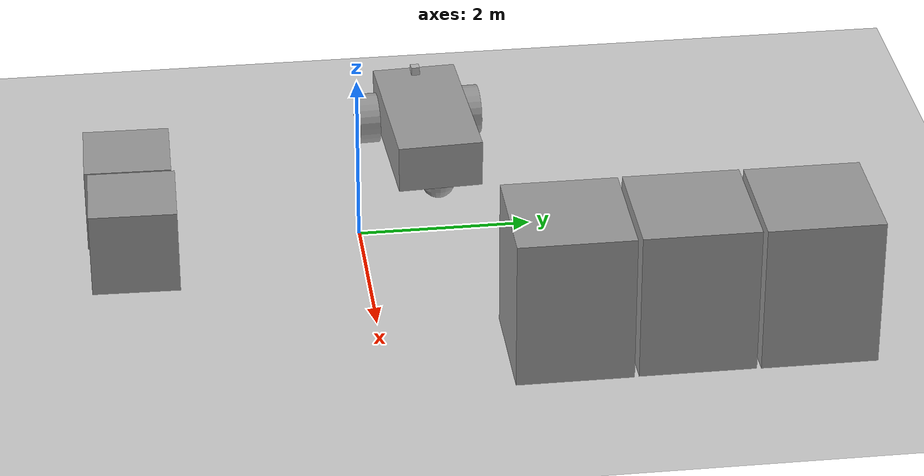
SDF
<sdf version="1.7">
 <world name="default">
  <model name="ground_plane">
   <static>1</static>
   <link name="link">
    <collision name="collision">
     <geometry><plane><normal>0 0 1</normal><size>100 100</size></plane></geometry>
     <surface><friction><ode><mu>100</mu><mu2>50</mu2></ode></friction></surface>
    </collision>
    <visual name="visual">
     <cast_shadows>0</cast_shadows>
     <geometry><plane><normal>0 0 1</normal><size>100 100</size></plane></geometry>
     <material>
      <script><uri>file://media/materials/scripts/gazebo.material</uri><name>Gazebo/Grey</name></script>
     </material>
    </visual>
   </link>
  </model>
  <model name="unit_box_2">
   <pose>-0.515594 -2.64975 0.499995 -1e-05 -0 -0.018841</pose>
   <link name="link">
    <inertial>
     <mass>1</mass>
     <inertia>
      <ixx>0.166667</ixx>
      <ixy>0</ixy>
      <ixz>0</ixz>
      <iyy>0.166667</iyy>
      <iyz>0</iyz>
      <izz>0.166667</izz>
     </inertia>
    </inertial>
    <collision name="collision"><geometry><box><size>1 1 1</size></box></geometry></collision>
    <visual name="visual">
     <geometry><box><size>1 1 1</size></box></geometry>
     <material>
      <script><name>Gazebo/Grey</name><uri>file://media/materials/scripts/gazebo.material</uri></script>
     </material>
    </visual>
   </link>
  </model>
  <model name="unit_box_2_clone">
   <pose>0.506728 -2.63165 0.499995 1e-05 0 -0.022841</pose>
   <link name="link">
    <inertial>
     <mass>1</mass>
     <inertia>
      <ixx>0.166667</ixx>
      <ixy>0</ixy>
      <ixz>0</ixz>
      <iyy>0.166667</iyy>
      <iyz>0</iyz>
      <izz>0.166667</izz>
     </inertia>
    </inertial>
    <collision name="collision"><geometry><box><size>1 1 1</size></box></geometry></collision>
    <visual name="visual">
     <geometry><box><size>1 1 1</size></box></geometry>
     <material>
      <script><name>Gazebo/Grey</name><uri>file://media/materials/scripts/gazebo.material</uri></script>
     </material>
    </visual>
   </link>
  </model>
  <model name="follower_vehicle">
   <pose>-1.72256 0.970088 0.325005 5e-06 -5e-06 -3.09147</pose>
   <link name="chassis">
    <pose>-0.151427 -0 0.175 0 -0 0</pose>
    <inertial>
     <mass>1.14395</mass>
     <inertia>
      <ixx>0.126164</ixx>
      <ixy>0</ixy>
      <ixz>0</ixz>
      <iyy>0.416519</iyy>
      <iyz>0</iyz>
      <izz>0.481014</izz>
     </inertia>
    </inertial>
    <visual name="visual">
     <geometry><box><size>2.01142 1 0.568726</size></box></geometry>
     <material>
      <script><uri>file://media/materials/scripts/gazebo.material</uri><name>Gazebo/Grey</name></script>
     </material>
    </visual>
    <collision name="collision">
     <geometry><box><size>2.01142 1 0.568726</size></box></geometry>
     <surface>
      <friction><ode><mu>1</mu><mu2>1</mu2><fdir1>0 0 0</fdir1><slip1>0</slip1><slip2>0</slip2></ode></friction>
      <bounce><restitution_coefficient>0</restitution_coefficient><threshold>1e+06</threshold></bounce>
      <contact>
       <collide_without_contact>0</collide_without_contact>
       <collide_without_contact_bitmask>1</collide_without_contact_bitmask>
       <collide_bitmask>1</collide_bitmask>
       <ode>
        <soft_cfm>0</soft_cfm>
        <soft_erp>0.2</soft_erp>
        <kp>1e+13</kp>
        <kd>1</kd>
        <max_vel>0.01</max_vel>
        <min_depth>0</min_depth>
       </ode>
      </contact>
     </surface>
    </collision>
   </link>
   <link name="wheel_1">
    <pose>0.554283 0.625029 -0.025 1.5707 -0 0</pose>
    <inertial>
     <mass>2</mass>
     <inertia><ixx>0.145833</ixx><ixy>0</ixy><ixz>0</ixz><iyy>0.145833</iyy><iyz>0</iyz><izz>0.125</izz></inertia>
    </inertial>
    <visual name="visual">
     <geometry><cylinder><radius>0.3</radius><length>0.25</length></cylinder></geometry>
     <material>
      <script><uri>file://media/materials/scripts/gazebo.material</uri><name>Gazebo/Grey</name></script>
     </material>
    </visual>
    <collision name="collision">
     <geometry><cylinder><radius>0.3</radius><length>0.25</length></cylinder></geometry>
     <surface>
      <friction><ode><mu>1</mu><mu2>1</mu2><fdir1>0 0 0</fdir1><slip1>0</slip1><slip2>0</slip2></ode></friction>
      <bounce><restitution_coefficient>0</restitution_coefficient><threshold>1e+06</threshold></bounce>
      <contact>
       <collide_without_contact>0</collide_without_contact>
       <collide_without_contact_bitmask>1</collide_without_contact_bitmask>
       <collide_bitmask>1</collide_bitmask>
       <ode>
        <soft_cfm>0</soft_cfm>
        <soft_erp>0.2</soft_erp>
        <kp>1e+13</kp>
        <kd>1</kd>
        <max_vel>0.01</max_vel>
        <min_depth>0</min_depth>
       </ode>
      </contact>
     </surface>
    </collision>
   </link>
   <link name="wheel_2">
    <pose>0.554282 -0.625029 -0.025 1.5707 -0 0</pose>
    <inertial>
     <mass>2</mass>
     <inertia><ixx>0.145833</ixx><ixy>0</ixy><ixz>0</ixz><iyy>0.145833</iyy><iyz>0</iyz><izz>0.125</izz></inertia>
    </inertial>
    <visual name="visual">
     <geometry><cylinder><radius>0.3</radius><length>0.25</length></cylinder></geometry>
     <material>
      <script><uri>file://media/materials/scripts/gazebo.material</uri><name>Gazebo/Grey</name></script>
     </material>
    </visual>
    <collision name="collision">
     <geometry><cylinder><radius>0.3</radius><length>0.25</length></cylinder></geometry>
     <surface>
      <friction><ode><mu>1</mu><mu2>1</mu2><fdir1>0 0 0</fdir1><slip1>0</slip1><slip2>0</slip2></ode></friction>
      <bounce><restitution_coefficient>0</restitution_coefficient><threshold>1e+06</threshold></bounce>
      <contact>
       <collide_without_contact>0</collide_without_contact>
       <collide_without_contact_bitmask>1</collide_without_contact_bitmask>
       <collide_bitmask>1</collide_bitmask>
       <ode>
        <soft_cfm>0</soft_cfm>
        <soft_erp>0.2</soft_erp>
        <kp>1e+13</kp>
        <kd>1</kd>
        <max_vel>0.01</max_vel>
        <min_depth>0</min_depth>
       </ode>
      </contact>
     </surface>
    </collision>
   </link>
   <link name="caster">
    <pose>-0.957138 -0 -0.125 0 -0 0</pose>
    <inertial>
     <mass>1</mass>
     <inertia><ixx>0.1</ixx><ixy>0</ixy><ixz>0</ixz><iyy>0.1</iyy><iyz>0</iyz><izz>0.1</izz></inertia>
    </inertial>
    <visual name="visual">
     <geometry><sphere><radius>0.2</radius></sphere></geometry>
     <material>
      <script><uri>file://media/materials/scripts/gazebo.material</uri><name>Gazebo/Grey</name></script>
     </material>
    </visual>
    <collision name="collision">
     <geometry><sphere><radius>0.2</radius></sphere></geometry>
     <surface>
      <friction><ode><mu>1</mu><mu2>1</mu2><fdir1>0 0 0</fdir1><slip1>0</slip1><slip2>0</slip2></ode></friction>
      <bounce><restitution_coefficient>0</restitution_coefficient><threshold>1e+06</threshold></bounce>
      <contact>
       <collide_without_contact>0</collide_without_contact>
       <collide_without_contact_bitmask>1</collide_without_contact_bitmask>
       <collide_bitmask>1</collide_bitmask>
       <ode>
        <soft_cfm>0</soft_cfm>
        <soft_erp>0.2</soft_erp>
        <kp>1e+13</kp>
        <kd>1</kd>
        <max_vel>0.01</max_vel>
        <min_depth>0</min_depth>
       </ode>
      </contact>
     </surface>
    </collision>
   </link>
   <model name="depth_camera">
    <link name="link">
     <pose>0.05 0.05 0.05 0 -0 0</pose>
     <inertial>
      <mass>0.1</mass>
      <inertia>
       <ixx>0.000166667</ixx>
       <iyy>0.000166667</iyy>
       <izz>0.000166667</izz>
       <ixy>0</ixy>
       <ixz>0</ixz>
       <iyz>0</iyz>
      </inertia>
     </inertial>
     <collision name="collision"><geometry><box><size>0.1 0.1 0.1</size></box></geometry></collision>
     <visual name="visual"><geometry><box><size>0.1 0.1 0.1</size></box></geometry></visual>
     <sensor name="camera" type="depth">
      <camera name="depth">
       <horizontal_fov>1.047</horizontal_fov>
       <image><width>320</width><height>240</height></image>
       <clip><near>0.1</near><far>100</far></clip>
      </camera>
      <always_on>1</always_on>
      <update_rate>30</update_rate>
      <visualize>1</visualize>
     </sensor>
    </link>
    <pose>0.569632 -0.03223 0.502056 0 -0 0</pose>
   </model>
   <joint name="chassis_wheel_1_revolute" type="revolute">
    <parent>chassis</parent>
    <child>wheel_1</child>
    <axis>
     <xyz>0 0 1</xyz>
     <limit>
      <lower>-1.79769e+308</lower>
      <upper>1.79769e+308</upper>
      <effort>-1</effort>
      <velocity>-1</velocity>
     </limit>
     <dynamics>
      <spring_reference>0</spring_reference>
      <spring_stiffness>0</spring_stiffness>
      <damping>0</damping>
      <friction>0</friction>
     </dynamics>
    </axis>
    <physics>
     <ode><limit><cfm>0</cfm><erp>0.2</erp></limit><suspension><cfm>0</cfm><erp>0.2</erp></suspension></ode>
    </physics>
   </joint>
   <joint name="chassis_wheel_2_revolute" type="revolute">
    <parent>chassis</parent>
    <child>wheel_2</child>
    <axis>
     <xyz>0 0 1</xyz>
     <limit>
      <lower>-1.79769e+308</lower>
      <upper>1.79769e+308</upper>
      <effort>-1</effort>
      <velocity>-1</velocity>
     </limit>
     <dynamics>
      <spring_reference>0</spring_reference>
      <spring_stiffness>0</spring_stiffness>
      <damping>0</damping>
      <friction>0</friction>
     </dynamics>
    </axis>
    <physics>
     <ode><limit><cfm>0</cfm><erp>0.2</erp></limit><suspension><cfm>0</cfm><erp>0.2</erp></suspension></ode>
    </physics>
   </joint>
   <joint name="chassis_caster_ball" type="ball">
    <parent>chassis</parent>
    <child>caster</child>
    <physics>
     <ode><limit><cfm>0</cfm><erp>0.2</erp></limit><suspension><cfm>0</cfm><erp>0.2</erp></suspension></ode>
    </physics>
   </joint>
   <joint name="chassis_depth_camera_link_fixed" type="fixed">
    <parent>chassis</parent>
    <child>depth_camera::link</child>
    <physics>
     <ode><limit><cfm>0</cfm><erp>0.2</erp></limit><suspension><cfm>0</cfm><erp>0.2</erp></suspension></ode>
    </physics>
   </joint>
   <static>0</static>
   <plugin name="follower" filename="libFollowerPlugin.so"/>
  </model>
  <model name="unit_box_0">
   <pose>2.76072 0.682875 0.91378 -5e-06 -1e-06 0.000181</pose>
   <link name="link">
    <inertial>
     <mass>1</mass>
     <inertia>
      <ixx>0.166667</ixx>
      <ixy>0</ixy>
      <ixz>0</ixz>
      <iyy>0.166667</iyy>
      <iyz>0</iyz>
      <izz>0.166667</izz>
     </inertia>
    </inertial>
    <collision name="collision"><geometry><box><size>0.000893989 0.00236279 0</size></box></geometry></collision>
    <visual name="visual">
     <geometry><box><size>0.000893989 0.00236279 0</size></box></geometry>
     <material>
      <script><name>Gazebo/Grey</name><uri>file://media/materials/scripts/gazebo.material</uri></script>
     </material>
    </visual>
   </link>
  </model>
  <model name="unit_box_0_clone">
   <pose>2.77269 2.02175 0.86697 0 0 -9e-06</pose>
   <link name="link">
    <inertial>
     <mass>1</mass>
     <inertia>
      <ixx>0.166667</ixx>
      <ixy>0</ixy>
      <ixz>0</ixz>
      <iyy>0.166667</iyy>
      <iyz>0</iyz>
      <izz>0.166667</izz>
     </inertia>
    </inertial>
    <collision name="collision"><geometry><box><size>1.37357 1.30715 1.73394</size></box></geometry></collision>
    <visual name="visual">
     <geometry><box><size>1.37357 1.30715 1.73394</size></box></geometry>
     <material>
      <script><name>Gazebo/Grey</name><uri>file://media/materials/scripts/gazebo.material</uri></script>
     </material>
    </visual>
   </link>
  </model>
  <model name="unit_box_0_clone_0">
   <pose>2.7645 3.38042 0.86697 0 0 -9e-06</pose>
   <link name="link">
    <inertial>
     <mass>1</mass>
     <inertia>
      <ixx>0.166667</ixx>
      <ixy>0</ixy>
      <ixz>0</ixz>
      <iyy>0.166667</iyy>
      <iyz>0</iyz>
      <izz>0.166667</izz>
     </inertia>
    </inertial>
    <collision name="collision"><geometry><box><size>1.37357 1.30715 1.73394</size></box></geometry></collision>
    <visual name="visual">
     <geometry><box><size>1.37357 1.30715 1.73394</size></box></geometry>
     <material>
      <script><name>Gazebo/Grey</name><uri>file://media/materials/scripts/gazebo.material</uri></script>
     </material>
    </visual>
   </link>
  </model>
  <model name="unit_box_0_clone_1">
   <pose>2.77036 4.73682 0.86697 0 0 -9e-06</pose>
   <link name="link">
    <inertial>
     <mass>1</mass>
     <inertia>
      <ixx>0.166667</ixx>
      <ixy>0</ixy>
      <ixz>0</ixz>
      <iyy>0.166667</iyy>
      <iyz>0</iyz>
      <izz>0.166667</izz>
     </inertia>
    </inertial>
    <collision name="collision"><geometry><box><size>1.37357 1.30715 1.73394</size></box></geometry></collision>
    <visual name="visual">
     <geometry><box><size>1.37357 1.30715 1.73394</size></box></geometry>
     <material>
      <script><name>Gazebo/Grey</name><uri>file://media/materials/scripts/gazebo.material</uri></script>
     </material>
    </visual>
   </link>
  </model>
 </world>
</sdf>
